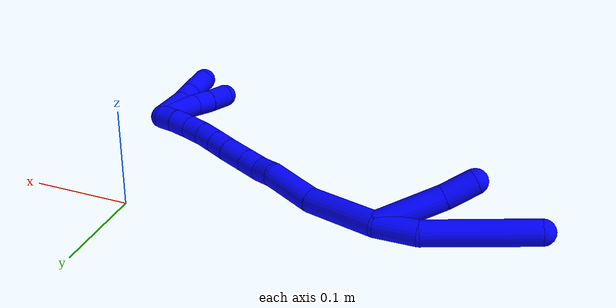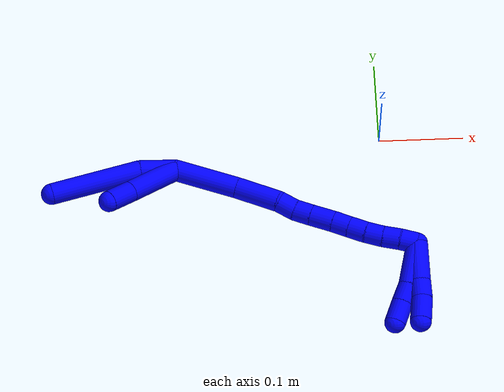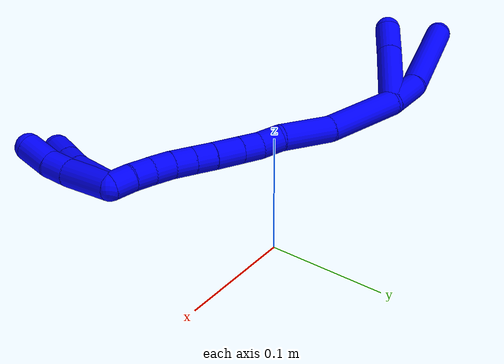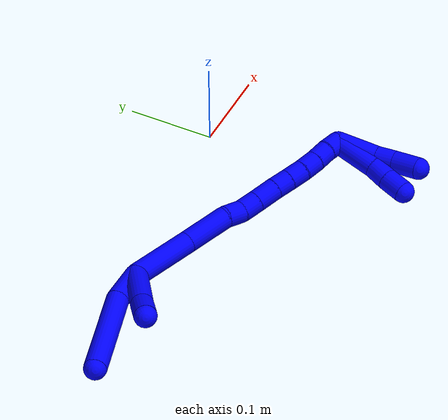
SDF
<sdf version="1.7">
 <world name="default">
  <model name="1">
   <static>0</static>
   <link name="1">
    <collision name="collision-cylinder-e_1_2_8">
     <pose>-0.015272 0.001272 0.013959 -0.090864 -0.828234 0.03996</pose>
     <geometry><cylinder><radius>0.0125</radius><length>0.041459</length></cylinder></geometry>
     <surface>
      <friction><ode><mu>1.16</mu><mu2>1.16</mu2><slip1>0</slip1><slip2>0</slip2></ode></friction>
      <contact><ode><kp>1e+06</kp><kd>1</kd><max_vel>0</max_vel><min_depth>0.001</min_depth></ode></contact>
     </surface>
    </collision>
    <visual name="visual-cylinder-e_1_2_8">
     <pose>-0.015272 0.001272 0.013959 -0.090864 -0.828234 0.03996</pose>
     <geometry><cylinder><radius>0.0125</radius><length>0.041459</length></cylinder></geometry>
     <material><ambient>0 0 1 1</ambient></material>
    </visual>
    <collision name="collision-cylinder-e_2_8_6">
     <pose>-0.061522 -0.005417 0.071762 0.179615 -0.607483 -0.056435</pose>
     <geometry><cylinder><radius>0.0125</radius><length>0.108541</length></cylinder></geometry>
     <surface>
      <friction><ode><mu>1.16</mu><mu2>1.16</mu2><slip1>0</slip1><slip2>0</slip2></ode></friction>
      <contact><ode><kp>1e+06</kp><kd>1</kd><max_vel>0</max_vel><min_depth>0.001</min_depth></ode></contact>
     </surface>
    </collision>
    <visual name="visual-cylinder-e_2_8_6">
     <pose>-0.061522 -0.005417 0.071762 0.179615 -0.607483 -0.056435</pose>
     <geometry><cylinder><radius>0.0125</radius><length>0.108541</length></cylinder></geometry>
     <material><ambient>0 0 1 1</ambient></material>
    </visual>
    <collision name="collision-cylinder-e_1_2_9">
     <pose>-0.007636 -0.007777 0.031899 0.239144 -0.228493 -0.027571</pose>
     <geometry><cylinder><radius>0.0125</radius><length>0.067419</length></cylinder></geometry>
     <surface>
      <friction><ode><mu>1.16</mu><mu2>1.16</mu2><slip1>0</slip1><slip2>0</slip2></ode></friction>
      <contact><ode><kp>1e+06</kp><kd>1</kd><max_vel>0</max_vel><min_depth>0.001</min_depth></ode></contact>
     </surface>
    </collision>
    <visual name="visual-cylinder-e_1_2_9">
     <pose>-0.007636 -0.007777 0.031899 0.239144 -0.228493 -0.027571</pose>
     <geometry><cylinder><radius>0.0125</radius><length>0.067419</length></cylinder></geometry>
     <material><ambient>0 0 1 1</ambient></material>
    </visual>
    <collision name="collision-cylinder-e_2_9_5">
     <pose>-0.017613 -0.018585 0.079632 0.189092 -0.144253 -0.013703</pose>
     <geometry><cylinder><radius>0.0125</radius><length>0.032581</length></cylinder></geometry>
     <surface>
      <friction><ode><mu>1.16</mu><mu2>1.16</mu2><slip1>0</slip1><slip2>0</slip2></ode></friction>
      <contact><ode><kp>1e+06</kp><kd>1</kd><max_vel>0</max_vel><min_depth>0.001</min_depth></ode></contact>
     </surface>
    </collision>
    <visual name="visual-cylinder-e_2_9_5">
     <pose>-0.017613 -0.018585 0.079632 0.189092 -0.144253 -0.013703</pose>
     <geometry><cylinder><radius>0.0125</radius><length>0.032581</length></cylinder></geometry>
     <material><ambient>0 0 1 1</ambient></material>
    </visual>
    <collision name="collision-cylinder-e_1_2_10">
     <pose>0.029673 -0.01249 -0.019935 2.5819 0.900474 2.06874</pose>
     <geometry><cylinder><radius>0.0125</radius><length>0.075733</length></cylinder></geometry>
     <surface>
      <friction><ode><mu>1.16</mu><mu2>1.16</mu2><slip1>0</slip1><slip2>0</slip2></ode></friction>
      <contact><ode><kp>1e+06</kp><kd>1</kd><max_vel>0</max_vel><min_depth>0.001</min_depth></ode></contact>
     </surface>
    </collision>
    <visual name="visual-cylinder-e_1_2_10">
     <pose>0.029673 -0.01249 -0.019935 2.5819 0.900474 2.06874</pose>
     <geometry><cylinder><radius>0.0125</radius><length>0.075733</length></cylinder></geometry>
     <material><ambient>0 0 1 1</ambient></material>
    </visual>
    <collision name="collision-cylinder-e_2_10_11">
     <pose>0.08274 -0.033558 -0.04936 2.40663 1.07037 1.98983</pose>
     <geometry><cylinder><radius>0.0125</radius><length>0.053328</length></cylinder></geometry>
     <surface>
      <friction><ode><mu>1.16</mu><mu2>1.16</mu2><slip1>0</slip1><slip2>0</slip2></ode></friction>
      <contact><ode><kp>1e+06</kp><kd>1</kd><max_vel>0</max_vel><min_depth>0.001</min_depth></ode></contact>
     </surface>
    </collision>
    <visual name="visual-cylinder-e_2_10_11">
     <pose>0.08274 -0.033558 -0.04936 2.40663 1.07037 1.98983</pose>
     <geometry><cylinder><radius>0.0125</radius><length>0.053328</length></cylinder></geometry>
     <material><ambient>0 0 1 1</ambient></material>
    </visual>
    <collision name="collision-cylinder-e_3_11_12">
     <pose>0.113932 -0.047669 -0.063632 2.28348 0.817517 1.51619</pose>
     <geometry><cylinder><radius>0.0125</radius><length>0.021378</length></cylinder></geometry>
     <surface>
      <friction><ode><mu>1.16</mu><mu2>1.16</mu2><slip1>0</slip1><slip2>0</slip2></ode></friction>
      <contact><ode><kp>1e+06</kp><kd>1</kd><max_vel>0</max_vel><min_depth>0.001</min_depth></ode></contact>
     </surface>
    </collision>
    <visual name="visual-cylinder-e_3_11_12">
     <pose>0.113932 -0.047669 -0.063632 2.28348 0.817517 1.51619</pose>
     <geometry><cylinder><radius>0.0125</radius><length>0.021378</length></cylinder></geometry>
     <material><ambient>0 0 1 1</ambient></material>
    </visual>
    <collision name="collision-cylinder-e_4_12_13">
     <pose>0.130791 -0.056542 -0.072592 2.46711 1.03739 2.03992</pose>
     <geometry><cylinder><radius>0.0125</radius><length>0.021047</length></cylinder></geometry>
     <surface>
      <friction><ode><mu>1.16</mu><mu2>1.16</mu2><slip1>0</slip1><slip2>0</slip2></ode></friction>
      <contact><ode><kp>1e+06</kp><kd>1</kd><max_vel>0</max_vel><min_depth>0.001</min_depth></ode></contact>
     </surface>
    </collision>
    <visual name="visual-cylinder-e_4_12_13">
     <pose>0.130791 -0.056542 -0.072592 2.46711 1.03739 2.03992</pose>
     <geometry><cylinder><radius>0.0125</radius><length>0.021047</length></cylinder></geometry>
     <material><ambient>0 0 1 1</ambient></material>
    </visual>
    <collision name="collision-cylinder-e_5_13_14">
     <pose>0.151638 -0.063989 -0.082205 2.49457 1.04684 2.08895</pose>
     <geometry><cylinder><radius>0.0125</radius><length>0.027224</length></cylinder></geometry>
     <surface>
      <friction><ode><mu>1.16</mu><mu2>1.16</mu2><slip1>0</slip1><slip2>0</slip2></ode></friction>
      <contact><ode><kp>1e+06</kp><kd>1</kd><max_vel>0</max_vel><min_depth>0.001</min_depth></ode></contact>
     </surface>
    </collision>
    <visual name="visual-cylinder-e_5_13_14">
     <pose>0.151638 -0.063989 -0.082205 2.49457 1.04684 2.08895</pose>
     <geometry><cylinder><radius>0.0125</radius><length>0.027224</length></cylinder></geometry>
     <material><ambient>0 0 1 1</ambient></material>
    </visual>
    <collision name="collision-cylinder-e_6_14_15">
     <pose>0.172101 -0.071464 -0.091381 2.40856 1.04497 1.96571</pose>
     <geometry><cylinder><radius>0.0125</radius><length>0.020065</length></cylinder></geometry>
     <surface>
      <friction><ode><mu>1.16</mu><mu2>1.16</mu2><slip1>0</slip1><slip2>0</slip2></ode></friction>
      <contact><ode><kp>1e+06</kp><kd>1</kd><max_vel>0</max_vel><min_depth>0.001</min_depth></ode></contact>
     </surface>
    </collision>
    <visual name="visual-cylinder-e_6_14_15">
     <pose>0.172101 -0.071464 -0.091381 2.40856 1.04497 1.96571</pose>
     <geometry><cylinder><radius>0.0125</radius><length>0.020065</length></cylinder></geometry>
     <material><ambient>0 0 1 1</ambient></material>
    </visual>
    <collision name="collision-cylinder-e_7_15_16">
     <pose>0.18971 -0.078198 -0.099041 2.432 1.04652 1.99987</pose>
     <geometry><cylinder><radius>0.0125</radius><length>0.020634</length></cylinder></geometry>
     <surface>
      <friction><ode><mu>1.16</mu><mu2>1.16</mu2><slip1>0</slip1><slip2>0</slip2></ode></friction>
      <contact><ode><kp>1e+06</kp><kd>1</kd><max_vel>0</max_vel><min_depth>0.001</min_depth></ode></contact>
     </surface>
    </collision>
    <visual name="visual-cylinder-e_7_15_16">
     <pose>0.18971 -0.078198 -0.099041 2.432 1.04652 1.99987</pose>
     <geometry><cylinder><radius>0.0125</radius><length>0.020634</length></cylinder></geometry>
     <material><ambient>0 0 1 1</ambient></material>
    </visual>
    <collision name="collision-cylinder-e_8_16_17">
     <pose>0.207305 -0.084349 -0.107673 2.60786 1.00714 2.22037</pose>
     <geometry><cylinder><radius>0.0125</radius><length>0.0205</length></cylinder></geometry>
     <surface>
      <friction><ode><mu>1.16</mu><mu2>1.16</mu2><slip1>0</slip1><slip2>0</slip2></ode></friction>
      <contact><ode><kp>1e+06</kp><kd>1</kd><max_vel>0</max_vel><min_depth>0.001</min_depth></ode></contact>
     </surface>
    </collision>
    <visual name="visual-cylinder-e_8_16_17">
     <pose>0.207305 -0.084349 -0.107673 2.60786 1.00714 2.22037</pose>
     <geometry><cylinder><radius>0.0125</radius><length>0.0205</length></cylinder></geometry>
     <material><ambient>0 0 1 1</ambient></material>
    </visual>
    <collision name="collision-cylinder-e_9_17_18">
     <pose>0.22446 -0.089159 -0.117361 2.75507 1.00692 2.4588</pose>
     <geometry><cylinder><radius>0.0125</radius><length>0.02009</length></cylinder></geometry>
     <surface>
      <friction><ode><mu>1.16</mu><mu2>1.16</mu2><slip1>0</slip1><slip2>0</slip2></ode></friction>
      <contact><ode><kp>1e+06</kp><kd>1</kd><max_vel>0</max_vel><min_depth>0.001</min_depth></ode></contact>
     </surface>
    </collision>
    <visual name="visual-cylinder-e_9_17_18">
     <pose>0.22446 -0.089159 -0.117361 2.75507 1.00692 2.4588</pose>
     <geometry><cylinder><radius>0.0125</radius><length>0.02009</length></cylinder></geometry>
     <material><ambient>0 0 1 1</ambient></material>
    </visual>
    <collision name="collision-cylinder-e_10_18_1">
     <pose>0.240813 -0.094051 -0.127807 2.65886 0.904776 2.20391</pose>
     <geometry><cylinder><radius>0.0125</radius><length>0.02</length></cylinder></geometry>
     <surface>
      <friction><ode><mu>1.16</mu><mu2>1.16</mu2><slip1>0</slip1><slip2>0</slip2></ode></friction>
      <contact><ode><kp>1e+06</kp><kd>1</kd><max_vel>0</max_vel><min_depth>0.001</min_depth></ode></contact>
     </surface>
    </collision>
    <visual name="visual-cylinder-e_10_18_1">
     <pose>0.240813 -0.094051 -0.127807 2.65886 0.904776 2.20391</pose>
     <geometry><cylinder><radius>0.0125</radius><length>0.02</length></cylinder></geometry>
     <material><ambient>0 0 1 1</ambient></material>
    </visual>
    <collision name="collision-cylinder-e_1_1_19">
     <pose>0.250905 -0.119212 -0.120366 1.04577 0.086292 0.049759</pose>
     <geometry><cylinder><radius>0.0125</radius><length>0.051717</length></cylinder></geometry>
     <surface>
      <friction><ode><mu>1.16</mu><mu2>1.16</mu2><slip1>0</slip1><slip2>0</slip2></ode></friction>
      <contact><ode><kp>1e+06</kp><kd>1</kd><max_vel>0</max_vel><min_depth>0.001</min_depth></ode></contact>
     </surface>
    </collision>
    <visual name="visual-cylinder-e_1_1_19">
     <pose>0.250905 -0.119212 -0.120366 1.04577 0.086292 0.049759</pose>
     <geometry><cylinder><radius>0.0125</radius><length>0.051717</length></cylinder></geometry>
     <material><ambient>0 0 1 1</ambient></material>
    </visual>
    <collision name="collision-cylinder-e_2_19_20">
     <pose>0.252615 -0.150592 -0.100611 0.925437 -0.045525 -0.022713</pose>
     <geometry><cylinder><radius>0.0125</radius><length>0.022776</length></cylinder></geometry>
     <surface>
      <friction><ode><mu>1.16</mu><mu2>1.16</mu2><slip1>0</slip1><slip2>0</slip2></ode></friction>
      <contact><ode><kp>1e+06</kp><kd>1</kd><max_vel>0</max_vel><min_depth>0.001</min_depth></ode></contact>
     </surface>
    </collision>
    <visual name="visual-cylinder-e_2_19_20">
     <pose>0.252615 -0.150592 -0.100611 0.925437 -0.045525 -0.022713</pose>
     <geometry><cylinder><radius>0.0125</radius><length>0.022776</length></cylinder></geometry>
     <material><ambient>0 0 1 1</ambient></material>
    </visual>
    <collision name="collision-cylinder-e_3_20_4">
     <pose>0.252351 -0.169594 -0.085749 0.890644 0.01991 0.009503</pose>
     <geometry><cylinder><radius>0.0125</radius><length>0.025507</length></cylinder></geometry>
     <surface>
      <friction><ode><mu>1.16</mu><mu2>1.16</mu2><slip1>0</slip1><slip2>0</slip2></ode></friction>
      <contact><ode><kp>1e+06</kp><kd>1</kd><max_vel>0</max_vel><min_depth>0.001</min_depth></ode></contact>
     </surface>
    </collision>
    <visual name="visual-cylinder-e_3_20_4">
     <pose>0.252351 -0.169594 -0.085749 0.890644 0.01991 0.009503</pose>
     <geometry><cylinder><radius>0.0125</radius><length>0.025507</length></cylinder></geometry>
     <material><ambient>0 0 1 1</ambient></material>
    </visual>
    <collision name="collision-cylinder-e_1_1_21">
     <pose>0.256197 -0.117489 -0.12412 1.15186 0.322339 0.210368</pose>
     <geometry><cylinder><radius>0.0125</radius><length>0.047479</length></cylinder></geometry>
     <surface>
      <friction><ode><mu>1.16</mu><mu2>1.16</mu2><slip1>0</slip1><slip2>0</slip2></ode></friction>
      <contact><ode><kp>1e+06</kp><kd>1</kd><max_vel>0</max_vel><min_depth>0.001</min_depth></ode></contact>
     </surface>
    </collision>
    <visual name="visual-cylinder-e_1_1_21">
     <pose>0.256197 -0.117489 -0.12412 1.15186 0.322339 0.210368</pose>
     <geometry><cylinder><radius>0.0125</radius><length>0.047479</length></cylinder></geometry>
     <material><ambient>0 0 1 1</ambient></material>
    </visual>
    <collision name="collision-cylinder-e_2_21_22">
     <pose>0.268148 -0.146902 -0.109932 1.05381 0.410747 0.241198</pose>
     <geometry><cylinder><radius>0.0125</radius><length>0.022191</length></cylinder></geometry>
     <surface>
      <friction><ode><mu>1.16</mu><mu2>1.16</mu2><slip1>0</slip1><slip2>0</slip2></ode></friction>
      <contact><ode><kp>1e+06</kp><kd>1</kd><max_vel>0</max_vel><min_depth>0.001</min_depth></ode></contact>
     </surface>
    </collision>
    <visual name="visual-cylinder-e_2_21_22">
     <pose>0.268148 -0.146902 -0.109932 1.05381 0.410747 0.241198</pose>
     <geometry><cylinder><radius>0.0125</radius><length>0.022191</length></cylinder></geometry>
     <material><ambient>0 0 1 1</ambient></material>
    </visual>
    <collision name="collision-cylinder-e_3_22_3">
     <pose>0.277884 -0.166594 -0.095732 0.868948 0.357442 0.167268</pose>
     <geometry><cylinder><radius>0.0125</radius><length>0.030329</length></cylinder></geometry>
     <surface>
      <friction><ode><mu>1.16</mu><mu2>1.16</mu2><slip1>0</slip1><slip2>0</slip2></ode></friction>
      <contact><ode><kp>1e+06</kp><kd>1</kd><max_vel>0</max_vel><min_depth>0.001</min_depth></ode></contact>
     </surface>
    </collision>
    <visual name="visual-cylinder-e_3_22_3">
     <pose>0.277884 -0.166594 -0.095732 0.868948 0.357442 0.167268</pose>
     <geometry><cylinder><radius>0.0125</radius><length>0.030329</length></cylinder></geometry>
     <material><ambient>0 0 1 1</ambient></material>
    </visual>
    <collision name="collision-sphere-3">
     <pose>0.283189 -0.177443 -0.08656 0 -0 0</pose>
     <geometry><sphere><radius>0.0125</radius></sphere></geometry>
     <surface>
      <friction><ode><mu>1.16</mu><mu2>1.16</mu2><slip1>0</slip1><slip2>0</slip2></ode></friction>
      <contact><ode><kp>1e+06</kp><kd>1</kd><max_vel>0</max_vel><min_depth>0.001</min_depth></ode></contact>
     </surface>
    </collision>
    <visual name="visual-sphere-3">
     <pose>0.283189 -0.177443 -0.08656 0 -0 0</pose>
     <geometry><sphere><radius>0.0125</radius></sphere></geometry>
     <material><ambient>0 0 1 1</ambient></material>
    </visual>
    <collision name="collision-sphere-22">
     <pose>0.272578 -0.155746 -0.104904 0 -0 0</pose>
     <geometry><sphere><radius>0.0125</radius></sphere></geometry>
     <surface>
      <friction><ode><mu>1.16</mu><mu2>1.16</mu2><slip1>0</slip1><slip2>0</slip2></ode></friction>
      <contact><ode><kp>1e+06</kp><kd>1</kd><max_vel>0</max_vel><min_depth>0.001</min_depth></ode></contact>
     </surface>
    </collision>
    <visual name="visual-sphere-22">
     <pose>0.272578 -0.155746 -0.104904 0 -0 0</pose>
     <geometry><sphere><radius>0.0125</radius></sphere></geometry>
     <material><ambient>0 0 1 1</ambient></material>
    </visual>
    <collision name="collision-sphere-21">
     <pose>0.263717 -0.138059 -0.11496 0 -0 0</pose>
     <geometry><sphere><radius>0.0125</radius></sphere></geometry>
     <surface>
      <friction><ode><mu>1.16</mu><mu2>1.16</mu2><slip1>0</slip1><slip2>0</slip2></ode></friction>
      <contact><ode><kp>1e+06</kp><kd>1</kd><max_vel>0</max_vel><min_depth>0.001</min_depth></ode></contact>
     </surface>
    </collision>
    <visual name="visual-sphere-21">
     <pose>0.263717 -0.138059 -0.11496 0 -0 0</pose>
     <geometry><sphere><radius>0.0125</radius></sphere></geometry>
     <material><ambient>0 0 1 1</ambient></material>
    </visual>
    <collision name="collision-sphere-4">
     <pose>0.252605 -0.179508 -0.077729 0 -0 0</pose>
     <geometry><sphere><radius>0.0125</radius></sphere></geometry>
     <surface>
      <friction><ode><mu>1.16</mu><mu2>1.16</mu2><slip1>0</slip1><slip2>0</slip2></ode></friction>
      <contact><ode><kp>1e+06</kp><kd>1</kd><max_vel>0</max_vel><min_depth>0.001</min_depth></ode></contact>
     </surface>
    </collision>
    <visual name="visual-sphere-4">
     <pose>0.252605 -0.179508 -0.077729 0 -0 0</pose>
     <geometry><sphere><radius>0.0125</radius></sphere></geometry>
     <material><ambient>0 0 1 1</ambient></material>
    </visual>
    <collision name="collision-sphere-20">
     <pose>0.252097 -0.15968 -0.093768 0 -0 0</pose>
     <geometry><sphere><radius>0.0125</radius></sphere></geometry>
     <surface>
      <friction><ode><mu>1.16</mu><mu2>1.16</mu2><slip1>0</slip1><slip2>0</slip2></ode></friction>
      <contact><ode><kp>1e+06</kp><kd>1</kd><max_vel>0</max_vel><min_depth>0.001</min_depth></ode></contact>
     </surface>
    </collision>
    <visual name="visual-sphere-20">
     <pose>0.252097 -0.15968 -0.093768 0 -0 0</pose>
     <geometry><sphere><radius>0.0125</radius></sphere></geometry>
     <material><ambient>0 0 1 1</ambient></material>
    </visual>
    <collision name="collision-sphere-10">
     <pose>0.059346 -0.024979 -0.039869 0 -0 0</pose>
     <geometry><sphere><radius>0.0125</radius></sphere></geometry>
     <surface>
      <friction><ode><mu>1.16</mu><mu2>1.16</mu2><slip1>0</slip1><slip2>0</slip2></ode></friction>
      <contact><ode><kp>1e+06</kp><kd>1</kd><max_vel>0</max_vel><min_depth>0.001</min_depth></ode></contact>
     </surface>
    </collision>
    <visual name="visual-sphere-10">
     <pose>0.059346 -0.024979 -0.039869 0 -0 0</pose>
     <geometry><sphere><radius>0.0125</radius></sphere></geometry>
     <material><ambient>0 0 1 1</ambient></material>
    </visual>
    <collision name="collision-sphere-5">
     <pose>-0.019955 -0.021615 0.095466 0 -0 0</pose>
     <geometry><sphere><radius>0.0125</radius></sphere></geometry>
     <surface>
      <friction><ode><mu>1.16</mu><mu2>1.16</mu2><slip1>0</slip1><slip2>0</slip2></ode></friction>
      <contact><ode><kp>1e+06</kp><kd>1</kd><max_vel>0</max_vel><min_depth>0.001</min_depth></ode></contact>
     </surface>
    </collision>
    <visual name="visual-sphere-5">
     <pose>-0.019955 -0.021615 0.095466 0 -0 0</pose>
     <geometry><sphere><radius>0.0125</radius></sphere></geometry>
     <material><ambient>0 0 1 1</ambient></material>
    </visual>
    <collision name="collision-sphere-6">
     <pose>-0.0925 -0.013378 0.115606 0 -0 0</pose>
     <geometry><sphere><radius>0.0125</radius></sphere></geometry>
     <surface>
      <friction><ode><mu>1.16</mu><mu2>1.16</mu2><slip1>0</slip1><slip2>0</slip2></ode></friction>
      <contact><ode><kp>1e+06</kp><kd>1</kd><max_vel>0</max_vel><min_depth>0.001</min_depth></ode></contact>
     </surface>
    </collision>
    <visual name="visual-sphere-6">
     <pose>-0.0925 -0.013378 0.115606 0 -0 0</pose>
     <geometry><sphere><radius>0.0125</radius></sphere></geometry>
     <material><ambient>0 0 1 1</ambient></material>
    </visual>
    <collision name="collision-sphere-9">
     <pose>-0.015271 -0.015554 0.063798 0 -0 0</pose>
     <geometry><sphere><radius>0.0125</radius></sphere></geometry>
     <surface>
      <friction><ode><mu>1.16</mu><mu2>1.16</mu2><slip1>0</slip1><slip2>0</slip2></ode></friction>
      <contact><ode><kp>1e+06</kp><kd>1</kd><max_vel>0</max_vel><min_depth>0.001</min_depth></ode></contact>
     </surface>
    </collision>
    <visual name="visual-sphere-9">
     <pose>-0.015271 -0.015554 0.063798 0 -0 0</pose>
     <geometry><sphere><radius>0.0125</radius></sphere></geometry>
     <material><ambient>0 0 1 1</ambient></material>
    </visual>
    <collision name="collision-sphere-2">
     <geometry><sphere><radius>0.0125</radius></sphere></geometry>
     <surface>
      <friction><ode><mu>1.16</mu><mu2>1.16</mu2><slip1>0</slip1><slip2>0</slip2></ode></friction>
      <contact><ode><kp>1e+06</kp><kd>1</kd><max_vel>0</max_vel><min_depth>0.001</min_depth></ode></contact>
     </surface>
    </collision>
    <visual name="visual-sphere-2">
     <geometry><sphere><radius>0.0125</radius></sphere></geometry>
     <material><ambient>0 0 1 1</ambient></material>
    </visual>
    <collision name="collision-sphere-19">
     <pose>0.253133 -0.141504 -0.107453 0 -0 0</pose>
     <geometry><sphere><radius>0.0125</radius></sphere></geometry>
     <surface>
      <friction><ode><mu>1.16</mu><mu2>1.16</mu2><slip1>0</slip1><slip2>0</slip2></ode></friction>
      <contact><ode><kp>1e+06</kp><kd>1</kd><max_vel>0</max_vel><min_depth>0.001</min_depth></ode></contact>
     </surface>
    </collision>
    <visual name="visual-sphere-19">
     <pose>0.253133 -0.141504 -0.107453 0 -0 0</pose>
     <geometry><sphere><radius>0.0125</radius></sphere></geometry>
     <material><ambient>0 0 1 1</ambient></material>
    </visual>
    <collision name="collision-sphere-8">
     <pose>-0.030544 0.002544 0.027918 0 -0 0</pose>
     <geometry><sphere><radius>0.0125</radius></sphere></geometry>
     <surface>
      <friction><ode><mu>1.16</mu><mu2>1.16</mu2><slip1>0</slip1><slip2>0</slip2></ode></friction>
      <contact><ode><kp>1e+06</kp><kd>1</kd><max_vel>0</max_vel><min_depth>0.001</min_depth></ode></contact>
     </surface>
    </collision>
    <visual name="visual-sphere-8">
     <pose>-0.030544 0.002544 0.027918 0 -0 0</pose>
     <geometry><sphere><radius>0.0125</radius></sphere></geometry>
     <material><ambient>0 0 1 1</ambient></material>
    </visual>
    <collision name="collision-sphere-11">
     <pose>0.106135 -0.042137 -0.058851 0 -0 0</pose>
     <geometry><sphere><radius>0.0125</radius></sphere></geometry>
     <surface>
      <friction><ode><mu>1.16</mu><mu2>1.16</mu2><slip1>0</slip1><slip2>0</slip2></ode></friction>
      <contact><ode><kp>1e+06</kp><kd>1</kd><max_vel>0</max_vel><min_depth>0.001</min_depth></ode></contact>
     </surface>
    </collision>
    <visual name="visual-sphere-11">
     <pose>0.106135 -0.042137 -0.058851 0 -0 0</pose>
     <geometry><sphere><radius>0.0125</radius></sphere></geometry>
     <material><ambient>0 0 1 1</ambient></material>
    </visual>
    <collision name="collision-sphere-12">
     <pose>0.121729 -0.053201 -0.068413 0 -0 0</pose>
     <geometry><sphere><radius>0.0125</radius></sphere></geometry>
     <surface>
      <friction><ode><mu>1.16</mu><mu2>1.16</mu2><slip1>0</slip1><slip2>0</slip2></ode></friction>
      <contact><ode><kp>1e+06</kp><kd>1</kd><max_vel>0</max_vel><min_depth>0.001</min_depth></ode></contact>
     </surface>
    </collision>
    <visual name="visual-sphere-12">
     <pose>0.121729 -0.053201 -0.068413 0 -0 0</pose>
     <geometry><sphere><radius>0.0125</radius></sphere></geometry>
     <material><ambient>0 0 1 1</ambient></material>
    </visual>
    <collision name="collision-sphere-13">
     <pose>0.139852 -0.059884 -0.076771 0 -0 0</pose>
     <geometry><sphere><radius>0.0125</radius></sphere></geometry>
     <surface>
      <friction><ode><mu>1.16</mu><mu2>1.16</mu2><slip1>0</slip1><slip2>0</slip2></ode></friction>
      <contact><ode><kp>1e+06</kp><kd>1</kd><max_vel>0</max_vel><min_depth>0.001</min_depth></ode></contact>
     </surface>
    </collision>
    <visual name="visual-sphere-13">
     <pose>0.139852 -0.059884 -0.076771 0 -0 0</pose>
     <geometry><sphere><radius>0.0125</radius></sphere></geometry>
     <material><ambient>0 0 1 1</ambient></material>
    </visual>
    <collision name="collision-sphere-14">
     <pose>0.163424 -0.068095 -0.087638 0 -0 0</pose>
     <geometry><sphere><radius>0.0125</radius></sphere></geometry>
     <surface>
      <friction><ode><mu>1.16</mu><mu2>1.16</mu2><slip1>0</slip1><slip2>0</slip2></ode></friction>
      <contact><ode><kp>1e+06</kp><kd>1</kd><max_vel>0</max_vel><min_depth>0.001</min_depth></ode></contact>
     </surface>
    </collision>
    <visual name="visual-sphere-14">
     <pose>0.163424 -0.068095 -0.087638 0 -0 0</pose>
     <geometry><sphere><radius>0.0125</radius></sphere></geometry>
     <material><ambient>0 0 1 1</ambient></material>
    </visual>
    <collision name="collision-sphere-15">
     <pose>0.180779 -0.074833 -0.095123 0 -0 0</pose>
     <geometry><sphere><radius>0.0125</radius></sphere></geometry>
     <surface>
      <friction><ode><mu>1.16</mu><mu2>1.16</mu2><slip1>0</slip1><slip2>0</slip2></ode></friction>
      <contact><ode><kp>1e+06</kp><kd>1</kd><max_vel>0</max_vel><min_depth>0.001</min_depth></ode></contact>
     </surface>
    </collision>
    <visual name="visual-sphere-15">
     <pose>0.180779 -0.074833 -0.095123 0 -0 0</pose>
     <geometry><sphere><radius>0.0125</radius></sphere></geometry>
     <material><ambient>0 0 1 1</ambient></material>
    </visual>
    <collision name="collision-sphere-16">
     <pose>0.198641 -0.081563 -0.102959 0 -0 0</pose>
     <geometry><sphere><radius>0.0125</radius></sphere></geometry>
     <surface>
      <friction><ode><mu>1.16</mu><mu2>1.16</mu2><slip1>0</slip1><slip2>0</slip2></ode></friction>
      <contact><ode><kp>1e+06</kp><kd>1</kd><max_vel>0</max_vel><min_depth>0.001</min_depth></ode></contact>
     </surface>
    </collision>
    <visual name="visual-sphere-16">
     <pose>0.198641 -0.081563 -0.102959 0 -0 0</pose>
     <geometry><sphere><radius>0.0125</radius></sphere></geometry>
     <material><ambient>0 0 1 1</ambient></material>
    </visual>
    <collision name="collision-sphere-17">
     <pose>0.21597 -0.087135 -0.112388 0 -0 0</pose>
     <geometry><sphere><radius>0.0125</radius></sphere></geometry>
     <surface>
      <friction><ode><mu>1.16</mu><mu2>1.16</mu2><slip1>0</slip1><slip2>0</slip2></ode></friction>
      <contact><ode><kp>1e+06</kp><kd>1</kd><max_vel>0</max_vel><min_depth>0.001</min_depth></ode></contact>
     </surface>
    </collision>
    <visual name="visual-sphere-17">
     <pose>0.21597 -0.087135 -0.112388 0 -0 0</pose>
     <geometry><sphere><radius>0.0125</radius></sphere></geometry>
     <material><ambient>0 0 1 1</ambient></material>
    </visual>
    <collision name="collision-sphere-18">
     <pose>0.23295 -0.091183 -0.122334 0 -0 0</pose>
     <geometry><sphere><radius>0.0125</radius></sphere></geometry>
     <surface>
      <friction><ode><mu>1.16</mu><mu2>1.16</mu2><slip1>0</slip1><slip2>0</slip2></ode></friction>
      <contact><ode><kp>1e+06</kp><kd>1</kd><max_vel>0</max_vel><min_depth>0.001</min_depth></ode></contact>
     </surface>
    </collision>
    <visual name="visual-sphere-18">
     <pose>0.23295 -0.091183 -0.122334 0 -0 0</pose>
     <geometry><sphere><radius>0.0125</radius></sphere></geometry>
     <material><ambient>0 0 1 1</ambient></material>
    </visual>
    <collision name="collision-sphere-1">
     <pose>0.248676 -0.09692 -0.133279 0 -0 0</pose>
     <geometry><sphere><radius>0.0125</radius></sphere></geometry>
     <surface>
      <friction><ode><mu>1.16</mu><mu2>1.16</mu2><slip1>0</slip1><slip2>0</slip2></ode></friction>
      <contact><ode><kp>1e+06</kp><kd>1</kd><max_vel>0</max_vel><min_depth>0.001</min_depth></ode></contact>
     </surface>
    </collision>
    <visual name="visual-sphere-1">
     <pose>0.248676 -0.09692 -0.133279 0 -0 0</pose>
     <geometry><sphere><radius>0.0125</radius></sphere></geometry>
     <material><ambient>0 0 1 1</ambient></material>
    </visual>
    <inertial>
     <pose>0.106972 -0.059484 -0.038791 0 -0 0</pose>
     <mass>0.75</mass>
     <inertia>
      <ixx>0.000188</ixx>
      <ixy>0</ixy>
      <ixz>0</ixz>
      <iyy>0.000229</iyy>
      <iyz>0</iyz>
      <izz>0.000102</izz>
     </inertia>
    </inertial>
   </link>
   <pose>-0.242772 -0.034513 0.015866 0.745284 -0.601437 -0.437644</pose>
  </model>
 </world>
</sdf>
